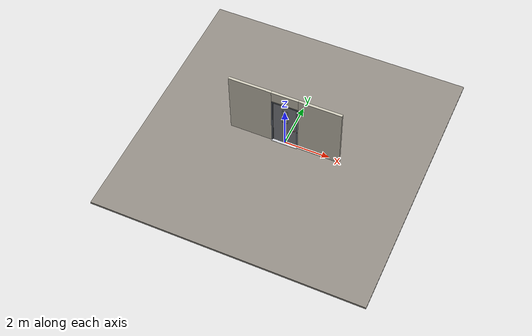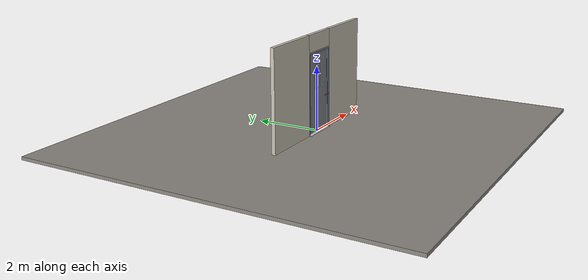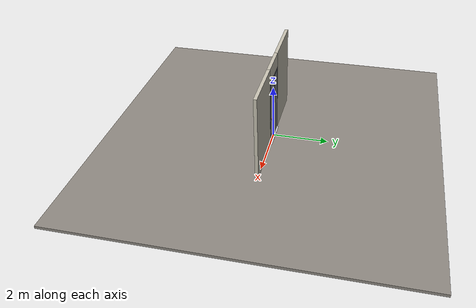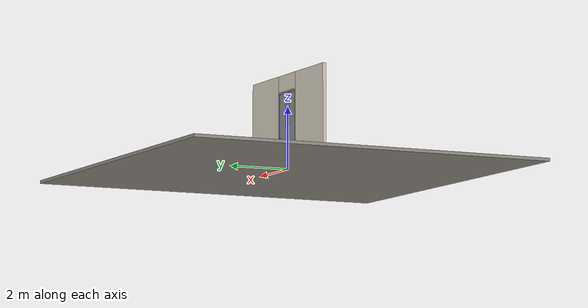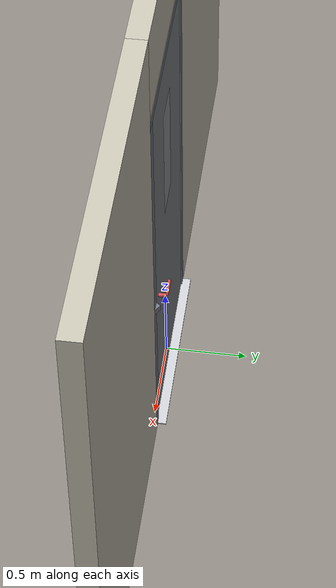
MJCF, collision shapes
<?xml version="1.0" ?>
<mujoco model="db0021_swing_single_minimal">
  <compiler angle="radian" meshdir="../../hardware" texturedir="../../textures" autolimits="true" inertiafromgeom="false"/>
  <option timestep="0.002" integrator="implicitfast" cone="elliptic" impratio="10" noslip_iterations="3">
    <flag multiccd="enable"/>
  </option>
  <size memory="16M"/>
  <default>
    <geom condim="4" solref="0.005 1" solimp="0.95 0.99 0.001"/>
    <joint solreflimit="0.005 1" solimplimit="0.95 0.99 0.001"/>
    <tendon solreflimit="0.005 1"/>
    <equality solref="0.002 1"/>
  </default>
  <visual>
    <headlight ambient="0.4 0.4 0.4" diffuse="0.7 0.7 0.7" specular="0.2 0.2 0.2"/>
    <quality shadowsize="4096"/>
    <map znear="0.01" zfar="60"/>
  </visual>
  <asset>
    <mesh name="lever_6268dcb28c" file="lever_6268dcb28c.obj"/>
    <material name="mat_floor" rgba="0.55 0.53 0.5 1" specular="0.2" shininess="0.15" reflectance="0"/>
    <material name="mat_wall" rgba="0.78 0.76 0.7 1" specular="0.2" shininess="0.1" reflectance="0"/>
    <material name="mat_leaf" rgba="0.5 0.51 0.53 1" specular="0.2" shininess="0.61" reflectance="0"/>
    <material name="mat_glass" rgba="0.8 0.85 0.85 0.35" specular="0.2" shininess="0.9" reflectance="0.1"/>
    <material name="mat_hinge" rgba="0.65 0.66 0.68 1" specular="0.74" shininess="0.5" reflectance="0.36"/>
    <material name="mat_op_stainless" rgba="0.75 0.76 0.77 1" specular="0.8" shininess="0.65" reflectance="0.4"/>
    <material name="mat_trim" rgba="0.85 0.66 0.3 1" specular="0.8" shininess="0.75" reflectance="0.4"/>
    <material name="mat_bolt" rgba="0.85 0.66 0.3 1" specular="0.8" shininess="0.75" reflectance="0.4"/>
    <material name="mat_maglock" rgba="0.22 0.17 0.13 1" specular="0.8" shininess="0.6" reflectance="0.4"/>
    <material name="mat_frame" rgba="0.45 0.48 0.52 1" specular="0.32" shininess="0.6" reflectance="0.08"/>
    <material name="mat_seal" rgba="0.1 0.1 0.1 1" specular="0.2" shininess="0.1" reflectance="0"/>
    <material name="mat_threshold" rgba="0.8 0.81 0.83 1" specular="0.8" shininess="0.6" reflectance="0.4"/>
    <material name="mat_closer" rgba="0.22 0.17 0.13 1" specular="0.8" shininess="0.6" reflectance="0.4"/>
    <material name="mat_kick" rgba="0.75 0.76 0.77 1" specular="0.8" shininess="0.65" reflectance="0.4"/>
    <material name="mat_bumper_stop" rgba="0.08 0.08 0.08 1" specular="0.2" shininess="0.1" reflectance="0"/>
    <material name="mat_stop_base" rgba="0.9 0.9 0.92 1" specular="0.8" shininess="0.9" reflectance="0.4"/>
    <texture name="skybox" type="skybox" builtin="gradient" rgb1="0.6 0.7 0.85" rgb2="0.9 0.92 0.95" width="256" height="256"/>
  </asset>
  <worldbody>
    <light name="sun" pos="1.5 -2.5 4" dir="-0.3 0.5 -0.8" directional="true" diffuse="0.8 0.8 0.8" specular="0.3 0.3 0.3" castshadow="true"/>
    <light name="fill" pos="-1.5 2.5 3" dir="0.3 -0.5 -0.7" directional="true" diffuse="0.35 0.35 0.4" castshadow="false"/>
    <camera name="robot_view" pos="0 -2.951313 2.043887" xyaxes="1 0 0 0 0.26963 0.962964" fovy="52"/>
    <camera name="far_view" pos="0 2.894312 2.043887" xyaxes="-1 0 0 0 -0.26963 0.962964" fovy="52"/>
    <camera name="iso" pos="2.221337 -2.483663 2.511538" xyaxes="0.741536 0.670913 0 -0.242917 0.268487 0.932151" fovy="46"/>
    <camera name="detail_handle" pos="0.547 -0.877 1.32" xyaxes="0.97561 0.219512 0 -0.070934 0.315262 0.94635" fovy="38"/>
    <geom name="floor" type="box" size="6 6 0.05" pos="0 0 -0.05" material="mat_floor" group="0" contype="1" conaffinity="1" friction="0.8 0.005 0.0001" density="2400"/>
    <geom name="wall_left" type="box" size="0.9565 0.0575 1.5255" pos="-1.5435 -0.0285 1.5255" material="mat_wall" group="0" contype="1" conaffinity="1" friction="0.6 0.005 0.0001" density="800"/>
    <geom name="wall_right" type="box" size="0.9415 0.0575 1.5255" pos="1.5585 -0.0285 1.5255" material="mat_wall" group="0" contype="1" conaffinity="1" friction="0.6 0.005 0.0001" density="800"/>
    <geom name="wall_header" type="box" size="0.602 0.0575 0.26" pos="0.015 -0.0285 2.791" material="mat_wall" group="0" contype="1" conaffinity="1" friction="0.6 0.005 0.0001" density="800"/>
    <geom name="jamb_hinge" type="box" size="0.025 0.0575 1.2255" pos="-0.562 -0.0285 1.2255" material="mat_frame" group="0" contype="1" conaffinity="1" friction="0.6 0.005 0.0001" density="300"/>
    <geom name="strike_1040_wall_n" type="box" size="0.04 0.03825 0.0183" pos="0.577 -0.04775 1.04" material="mat_frame" group="0" contype="1" conaffinity="1" friction="0.6 0.005 0.0001" density="300"/>
    <geom name="strike_1040_wall_p" type="box" size="0.04 0.008 0.0183" pos="0.577 0.0175 1.04" material="mat_frame" group="0" contype="1" conaffinity="1" friction="0.6 0.005 0.0001" density="300"/>
    <geom name="strike_1040_ramp" type="box" size="0.04 0.018028 0.0183" pos="0.580282 0.018312 1.04" quat="0.957092 0 0 -0.289784" material="mat_frame" group="0" contype="1" conaffinity="1" friction="0.12 0.005 0.0001" density="300"/>
    <geom name="strike_1040_back" type="box" size="0.0285 0.0095 0.0183" pos="0.5885 0 1.04" material="mat_frame" group="0" contype="1" conaffinity="1" friction="0.6 0.005 0.0001" density="300"/>
    <geom name="jamb_strike_0" type="box" size="0.04 0.0575 0.51085" pos="0.577 -0.0285 0.51085" material="mat_frame" group="0" contype="1" conaffinity="1" friction="0.6 0.005 0.0001" density="300"/>
    <geom name="jamb_strike_1" type="box" size="0.04 0.0575 0.69635" pos="0.577 -0.0285 1.75465" material="mat_frame" group="0" contype="1" conaffinity="1" friction="0.6 0.005 0.0001" density="300"/>
    <geom name="jamb_head" type="box" size="0.602 0.0575 0.025" pos="0.015 -0.0285 2.476" material="mat_frame" group="0" contype="1" conaffinity="1" friction="0.6 0.005 0.0001" density="300"/>
    <geom name="head_stud" type="box" size="0.602 0.0575 0.015" pos="0.015 -0.0285 2.516" material="mat_wall" group="0" contype="1" conaffinity="1" friction="0.6 0.005 0.0001" density="500"/>
    <geom name="stop_hinge" type="box" size="0.0055 0.016 1.2255" pos="-0.5315 -0.0385 1.2255" material="mat_frame" group="0" contype="1" conaffinity="1" friction="0.6 0.005 0.0001" density="300"/>
    <geom name="stop_strike" type="box" size="0.0055 0.016 1.2255" pos="0.5315 -0.0385 1.2255" material="mat_frame" group="0" contype="1" conaffinity="1" friction="0.6 0.005 0.0001" density="300"/>
    <geom name="stop_head" type="box" size="0.537 0.016 0.0055" pos="0 -0.0385 2.4455" material="mat_frame" group="0" contype="1" conaffinity="1" friction="0.6 0.005 0.0001" density="300"/>
    <geom name="threshold" type="box" size="0.587 0.1075 0.004" pos="0 -0.0285 0.004" material="mat_threshold" group="0" contype="1" conaffinity="1" friction="0.6 0.005 0.0001" density="2700"/>
    <site name="approach_point" pos="0 -1.5 0" quat="1 0 0 0" size="0.05" rgba="0.2 0.9 0.2 0.5" group="4"/>
    <site name="goal_point" pos="0 1.5 0" quat="1 0 0 0" size="0.05" rgba="0.2 0.9 0.2 0.5" group="4"/>
    <site name="door_plane_center" pos="0 0 1.2255" quat="1 0 0 0" size="0.02" rgba="0.2 0.9 0.2 0.5" group="4"/>
    <body name="leaf" pos="-0.537 0 0">
      <inertial pos="0.5365 0 1.22808" mass="58.887042" quat="-0.5 0.5 0.5 0.5" diaginertia="5.595484664 29.175382812 34.751866358"/>
      <joint name="leaf_hinge" type="hinge" axis="0 0 1" pos="0.003 0.029 0" limited="true" range="0 1.570796" solreflimit="0.02 1" damping="10.570702" frictionloss="2.926248" stiffness="13.852846" springref="-2.233476" armature="0.02"/>
      <geom name="leaf_slab" type="box" size="0.5335 0.022 1.219" pos="0.5365 0 1.228" material="mat_leaf" group="0" contype="1" conaffinity="1" friction="0.4 0.005 0.0001" density="1"/>
      <geom name="leaf_glass_0" type="box" size="0.125 0.0228 0.3657" pos="0.5365 0 1.7156" material="mat_glass" group="1" contype="0" conaffinity="0" density="1"/>
      <site name="leaf_edge_mid" pos="1.07 0 1.219" quat="1 0 0 0" size="0.02" rgba="0.2 0.9 0.2 0.5" group="4"/>
      <body name="leaf_handle" pos="1 0 1.04">
        <inertial pos="-0.03705 0 0" mass="0.984967" quat="0 0.707107 0.707107 0" diaginertia="0.002278035 0.00380889 0.005520856"/>
        <joint name="leaf_handle_hinge" type="hinge" axis="0 -1 0" limited="true" range="0 0.96" damping="0.255791" frictionloss="0.05" stiffness="1.2" springref="-0.583333" armature="0.01"/>
        <geom name="leaf_handle_lever_n" type="mesh" mesh="lever_6268dcb28c" pos="0 -0.022 0" quat="0.707107 0.707107 0 0" material="mat_op_stainless" group="1" contype="0" conaffinity="0" density="3000"/>
        <geom name="leaf_handle_lever_col_n" type="capsule" size="0.0095 0.0505" pos="-0.06 -0.077 0" quat="0.707107 0 -0.707107 0" material="mat_op_stainless" group="3" contype="1" conaffinity="1" rgba="0.8 0.3 0.3 0.25" friction="0.7 0.01 0.0001" density="3000"/>
        <geom name="leaf_handle_hub_col_n" type="cylinder" size="0.012 0.022" pos="0 -0.052 0" quat="0.707107 -0.707107 0 0" material="mat_op_stainless" group="3" contype="1" conaffinity="1" rgba="0.8 0.3 0.3 0.25" friction="0.6 0.005 0.0001" density="3000"/>
        <geom name="leaf_handle_lever_p" type="mesh" mesh="lever_6268dcb28c" pos="0 0.022 0" quat="-0.707107 0.707107 0 0" material="mat_op_stainless" group="1" contype="0" conaffinity="0" density="3000"/>
        <geom name="leaf_handle_lever_col_p" type="capsule" size="0.0095 0.0505" pos="-0.06 0.077 0" quat="0.707107 0 -0.707107 0" material="mat_op_stainless" group="3" contype="1" conaffinity="1" rgba="0.8 0.3 0.3 0.25" friction="0.7 0.01 0.0001" density="3000"/>
        <geom name="leaf_handle_hub_col_p" type="cylinder" size="0.012 0.022" pos="0 0.052 0" quat="0.707107 -0.707107 0 0" material="mat_op_stainless" group="3" contype="1" conaffinity="1" rgba="0.8 0.3 0.3 0.25" friction="0.6 0.005 0.0001" density="3000"/>
        <site name="leaf_handle_grip_n" pos="-0.096 -0.077 0" quat="1 0 0 0" size="0.012" rgba="0.2 0.9 0.2 0.5" group="4"/>
        <site name="leaf_handle_grip_p" pos="-0.096 0.077 0" quat="1 0 0 0" size="0.012" rgba="0.2 0.9 0.2 0.5" group="4"/>
      </body>
      <body name="leaf_latch_bolt" pos="1.07 0 1.04">
        <inertial pos="-0.0055 0 0" mass="0.074627" quat="0.92388 -0.382683 0 0" diaginertia="0.000002271 0.000013255 0.000013255"/>
        <joint name="leaf_latch_bolt_slide" type="slide" axis="-1 0 0" limited="true" range="0 0.019" damping="2" frictionloss="0.3" stiffness="600" springref="-0.01" armature="0.1"/>
        <geom name="leaf_latch_bolt_capsule" type="capsule" size="0.008 0.0165" pos="-0.0055 0 0" quat="0.707107 0 0.707107 0" material="mat_bolt" group="0" contype="1" conaffinity="1" friction="0.2 0.005 0.0001" density="8500"/>
      </body>
    </body>
  </worldbody>
  <tendon>
    <fixed name="leaf_latch_bolt_coupling" limited="true" range="0 10">
      <joint joint="leaf_latch_bolt_slide" coef="1"/>
      <joint joint="leaf_handle_hinge" coef="-0.020879"/>
    </fixed>
  </tendon>
  <equality>
    <weld name="leaf_maglock" body1="leaf" body2="world" active="true"/>
  </equality>
  <sensor>
    <jointpos name="leaf_hinge_pos" joint="leaf_hinge"/>
    <jointvel name="leaf_hinge_vel" joint="leaf_hinge"/>
    <jointpos name="leaf_handle_hinge_pos" joint="leaf_handle_hinge"/>
    <jointvel name="leaf_handle_hinge_vel" joint="leaf_handle_hinge"/>
    <jointpos name="leaf_latch_bolt_slide_pos" joint="leaf_latch_bolt_slide"/>
    <jointvel name="leaf_latch_bolt_slide_vel" joint="leaf_latch_bolt_slide"/>
  </sensor>
</mujoco>
